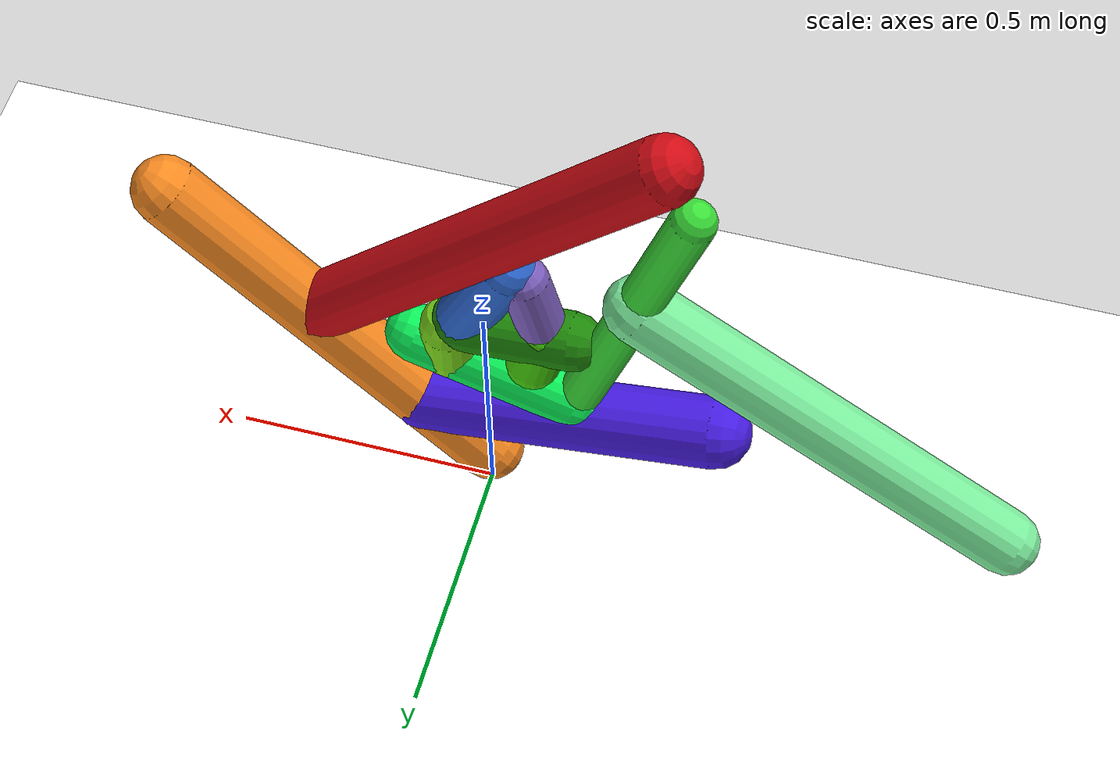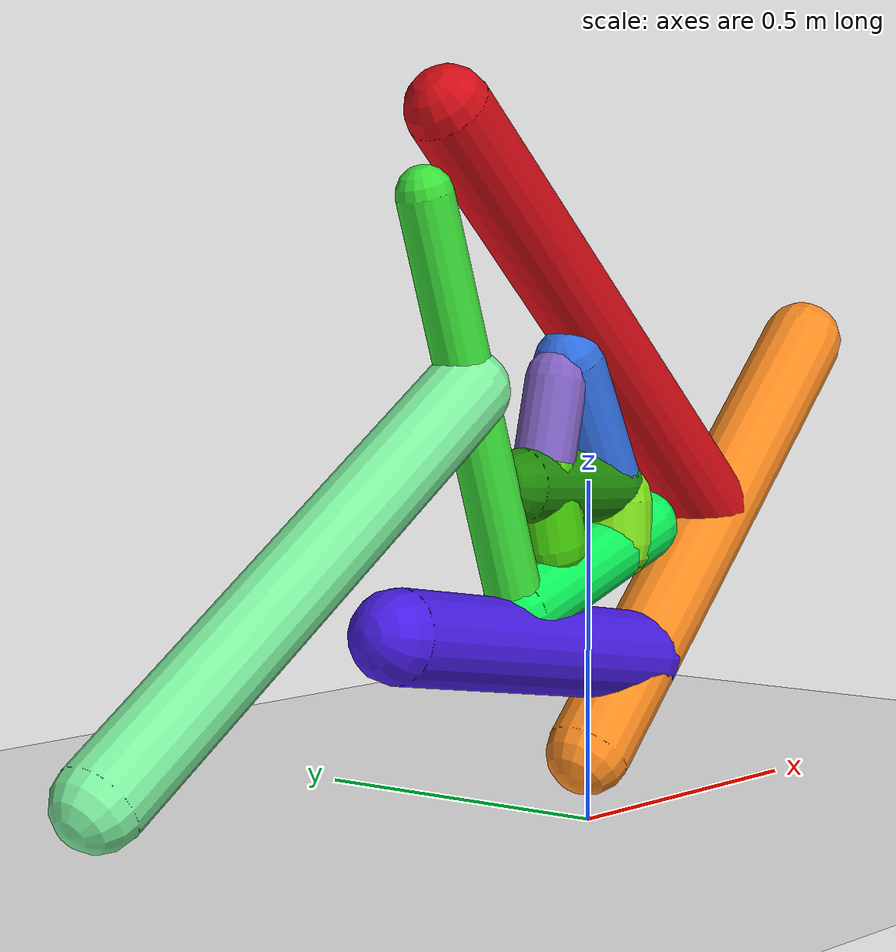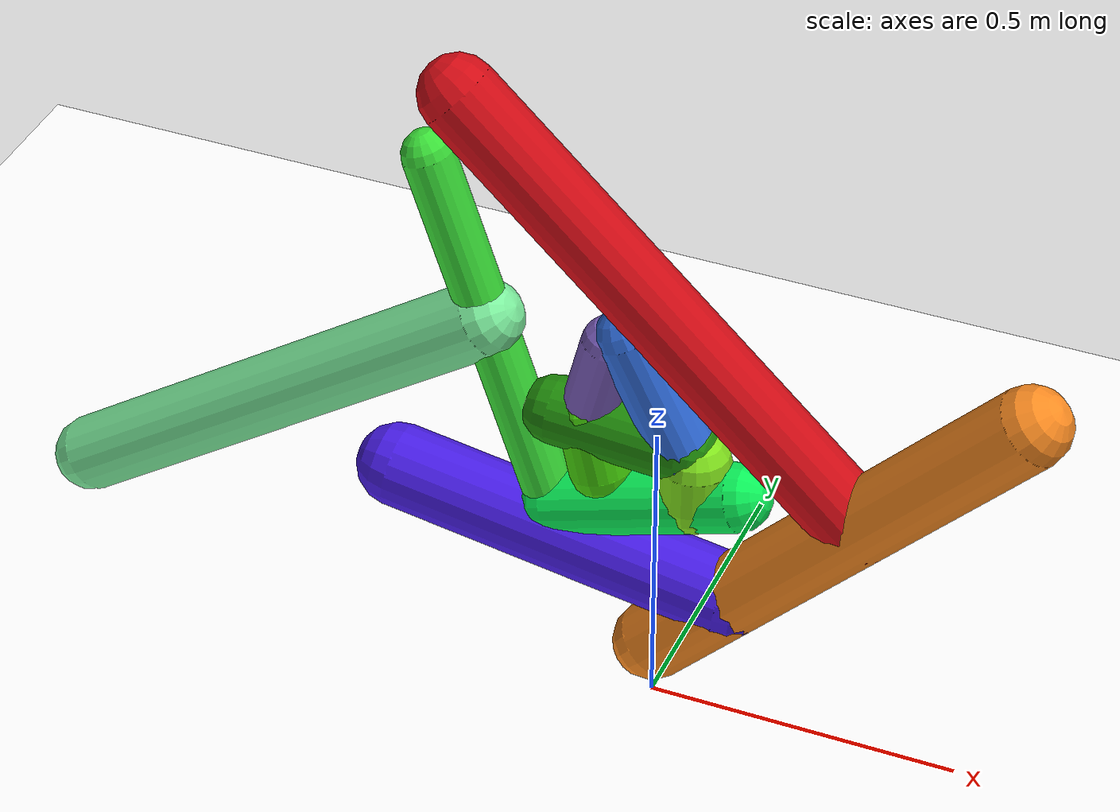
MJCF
<mujoco model="morphology">
  <option timestep="0.01"/>
  <default>
    <default class="/"/>
  </default>
  <asset>
    <texture name="texplane" type="2d" builtin="checker" rgb1="0.1 0.2 0.3" rgb2="0.2 0.3 0.4" width="300" height="300"/>
    <material name="MatPlane" class="/" texture="texplane" texrepeat="20 20" specular="1" shininess="1" reflectance="0.5"/>
  </asset>
  <worldbody>
    <light name="//unnamed_light_0" class="/" directional="true" pos="0 0 1.5" dir="0 0 -1.3" cutoff="1e+02" exponent="1" diffuse="1 1 1" specular="0.1 0.1 0.1"/>
    <geom name="ground" class="/" type="plane" size="15 15 0.5" material="MatPlane" rgba="1 1 1 1"/>
    <body name="body" pos="0 0 0.1">
      <geom name="geom0" class="/" type="capsule" contype="1" conaffinity="1" condim="3" size="0.063" rgba="0.99 0.55 0.13 1" friction="0.4 0.1 0.1" fromto="0 0 0 0.57 0 0.59"/>
      <body name="body1" pos="0.12 0 0.13">
        <geom name="geom1" class="/" type="capsule" contype="1" conaffinity="1" condim="3" size="0.067" rgba="0.28 0.11 0.9 1" friction="0.4 0.1 0.1" fromto="0 0 0 -0.55 0 0.087"/>
        <body name="body2" pos="-0.27 0 0.043">
          <geom name="geom2" class="/" type="capsule" contype="1" conaffinity="1" condim="3" size="0.041" rgba="0.23 0.88 0.22 1" friction="0.4 0.1 0.1" fromto="0 0 0 -0.22 0 0.64"/>
          <body name="body3" pos="-0.13 0 0.37">
            <geom name="geom3" class="/" type="capsule" contype="1" conaffinity="1" condim="3" size="0.061" rgba="0.49 0.94 0.62 1" friction="0.4 0.1 0.1" fromto="0 0 0 -0.7 0 -0.47"/>
            <joint name="joint3" class="/" type="hinge" axis="0 1 0" limited="true" stiffness="20" range="-62 62" armature="0.1" damping="2"/>
          </body>
          <body name="body4" pos="-0.018 0 0.052">
            <geom name="geom4" class="/" type="capsule" contype="1" conaffinity="1" condim="3" size="0.054" rgba="0.039 0.95 0.35 1" friction="0.4 0.1 0.1" fromto="0 0 0 0.3 0 0.1"/>
            <body name="body5" pos="0.23 0 0.079">
              <geom name="geom5" class="/" type="capsule" contype="1" conaffinity="1" condim="3" size="0.057" rgba="0.51 0.89 0.11 1" friction="0.4 0.1 0.1" fromto="0 0 0 0.00014 0 0.065"/>
              <body name="body6" pos="0.00011 0 0.051">
                <geom name="geom6" class="/" type="capsule" contype="1" conaffinity="1" condim="3" size="0.052" rgba="0.19 0.43 0.87 1" friction="0.4 0.1 0.1" fromto="0 0 0 -0.11 0 0.22"/>
                <body name="body7" pos="-0.017 0 0.036">
                  <geom name="geom7" class="/" type="capsule" contype="1" conaffinity="1" condim="3" size="0.054" rgba="0.12 0.54 0.039 1" friction="0.4 0.1 0.1" fromto="0 0 0 -0.21 0 0.013"/>
                  <body name="body8" pos="-0.16 0 0.011">
                    <geom name="geom8" class="/" type="capsule" contype="1" conaffinity="1" condim="3" size="0.045" rgba="0.5 0.38 0.76 1" friction="0.4 0.1 0.1" fromto="0 0 0 0.037 0 0.15"/>
                    <body name="body9" pos="0.0027 0 0.011">
                      <geom name="geom9" class="/" type="capsule" contype="1" conaffinity="1" condim="3" size="0.051" rgba="0.27 0.81 0.038 1" friction="0.4 0.1 0.1" fromto="0 0 0 0.023 0 -0.099"/>
                      <joint name="joint9" class="/" type="hinge" axis="0 1 0" limited="true" stiffness="20" range="-30 30" armature="0.1" damping="2"/>
                    </body>
                  </body>
                  <joint name="joint7" class="/" type="hinge" axis="0 1 0" limited="true" stiffness="20" range="-49 49" armature="0.1" damping="2"/>
                </body>
              </body>
              <joint name="joint5" class="/" type="hinge" axis="0 1 0" limited="true" stiffness="20" range="-39 39" armature="0.1" damping="2"/>
            </body>
            <joint name="joint4" class="/" type="hinge" axis="0 1 0" limited="true" stiffness="20" range="-30 30" armature="0.1" damping="2"/>
          </body>
          <joint name="joint2" class="/" type="hinge" axis="0 1 0" limited="true" stiffness="20" range="-54 54" armature="0.1" damping="2"/>
        </body>
        <joint name="joint1" class="/" type="hinge" axis="0 1 0" limited="true" stiffness="20" range="-46 46" armature="0.1" damping="2"/>
      </body>
      <body name="body10" pos="0.32 0 0.33">
        <geom name="geom10" class="/" type="capsule" contype="1" conaffinity="1" condim="3" size="0.062" rgba="0.83 0.046 0.082 1" friction="0.4 0.1 0.1" fromto="0 0 0 -0.64 0 0.6"/>
        <joint name="joint10" class="/" type="hinge" axis="0 1 0" limited="true" stiffness="20" range="-43 43" armature="0.1" damping="2"/>
      </body>
      <joint name="rootx" class="/" type="slide" axis="1 0 0" limited="false" stiffness="0" armature="0" damping="0"/>
      <joint name="rootz" class="/" type="slide" axis="0 0 1" limited="false" stiffness="0" armature="0" damping="0"/>
      <joint name="rooty" class="/" type="hinge" axis="0 1 0" limited="false" stiffness="0" armature="0" damping="0"/>
    </body>
  </worldbody>
  <actuator>
    <motor name="motor3" class="/" ctrllimited="true" ctrlrange="-1 1" gear="1.1e+02" joint="joint3"/>
    <motor name="motor9" class="/" ctrllimited="true" ctrlrange="-1 1" gear="1.2e+02" joint="joint9"/>
    <motor name="motor7" class="/" ctrllimited="true" ctrlrange="-1 1" gear="1.4e+02" joint="joint7"/>
    <motor name="motor5" class="/" ctrllimited="true" ctrlrange="-1 1" gear="1.9e+02" joint="joint5"/>
    <motor name="motor4" class="/" ctrllimited="true" ctrlrange="-1 1" gear="1.5e+02" joint="joint4"/>
    <motor name="motor2" class="/" ctrllimited="true" ctrlrange="-1 1" gear="1.2e+02" joint="joint2"/>
    <motor name="motor1" class="/" ctrllimited="true" ctrlrange="-1 1" gear="1.5e+02" joint="joint1"/>
    <motor name="motor10" class="/" ctrllimited="true" ctrlrange="-1 1" gear="1.2e+02" joint="joint10"/>
  </actuator>
  <sensor>
    <subtreelinvel name="velocity" body="body"/>
  </sensor>
</mujoco>
